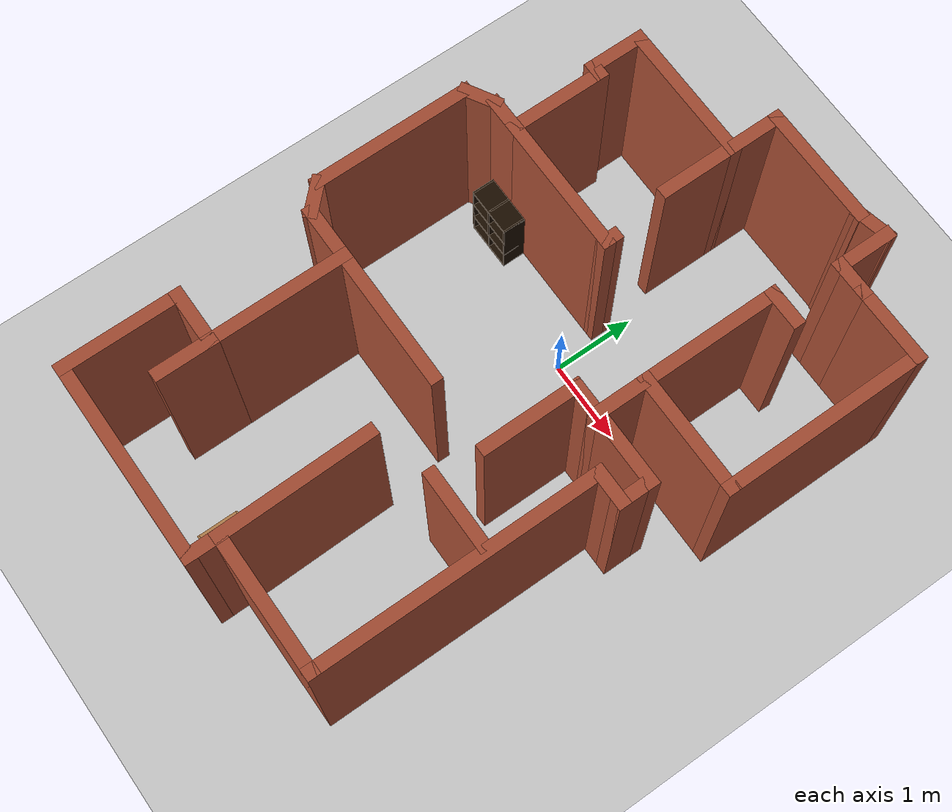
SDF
<sdf version="1.6">
 <world name="default">
  <light name="sun" type="directional">
   <pose>0 0 10 0 -0 0</pose>
   <diffuse>0.8 0.8 0.8 1</diffuse>
   <specular>0.2 0.2 0.2 1</specular>
   <attenuation>
    <range>1000</range>
    <constant>0.9</constant>
    <linear>0.01</linear>
    <quadratic>0.001</quadratic>
   </attenuation>
   <direction>-0.5 0.1 -0.9</direction>
  </light>
  <model name="ground_plane">
   <static>1</static>
   <link name="link">
    <collision name="collision">
     <geometry><plane><normal>0 0 1</normal><size>100 100</size></plane></geometry>
     <surface>
      <contact><collide_bitmask>65535</collide_bitmask></contact>
      <friction><ode><mu>100</mu><mu2>50</mu2></ode></friction>
     </surface>
    </collision>
    <visual name="visual">
     <cast_shadows>0</cast_shadows>
     <geometry><plane><normal>0 0 1</normal><size>100 100</size></plane></geometry>
     <material>
      <script><uri>file://media/materials/scripts/gazebo.material</uri><name>Gazebo/Grey</name></script>
     </material>
    </visual>
   </link>
  </model>
  <gravity>0 0 -9.8</gravity>
  <magnetic_field>6e-06 2.3e-05 -4.2e-05</magnetic_field>
  <atmosphere type="adiabatic"/>
  <physics name="default_physics" default="0" type="ode">
   <max_step_size>0.001</max_step_size>
   <real_time_factor>1</real_time_factor>
   <real_time_update_rate>1000</real_time_update_rate>
  </physics>
  <scene><ambient>0.4 0.4 0.4 1</ambient><background>0.7 0.7 0.7 1</background><shadows>1</shadows></scene>
  <audio><device>default</device></audio>
  <spherical_coordinates>
   <surface_model>EARTH_WGS84</surface_model>
   <latitude_deg>0</latitude_deg>
   <longitude_deg>0</longitude_deg>
   <elevation>0</elevation>
   <heading_deg>0</heading_deg>
  </spherical_coordinates>
  <model name="map_41">
   <pose>0.116232 -0.827112 0 0 -0 0</pose>
   <link name="Wall_1">
    <collision name="Wall_1_Collision">
     <geometry><box><size>1.5 0.15 2.5</size></box></geometry>
     <pose>0 0 1.25 0 -0 0</pose>
    </collision>
    <visual name="Wall_1_Visual">
     <pose>0 0 1.25 0 -0 0</pose>
     <geometry><box><size>1.5 0.15 2.5</size></box></geometry>
     <material>
      <script><uri>file://media/materials/scripts/gazebo.material</uri><name>Gazebo/Bricks</name></script>
      <ambient>1 1 1 1</ambient>
     </material>
     <meta><layer>0</layer></meta>
    </visual>
    <pose>0.319898 3.71517 0 0 -0 3.14159</pose>
   </link>
   <link name="Wall_10">
    <collision name="Wall_10_Collision">
     <geometry><box><size>0.5 0.15 2.5</size></box></geometry>
     <pose>0 0 1.25 0 -0 0</pose>
    </collision>
    <visual name="Wall_10_Visual">
     <pose>0 0 1.25 0 -0 0</pose>
     <geometry><box><size>0.5 0.15 2.5</size></box></geometry>
     <material>
      <script><uri>file://media/materials/scripts/gazebo.material</uri><name>Gazebo/Bricks</name></script>
      <ambient>1 1 1 1</ambient>
     </material>
     <meta><layer>0</layer></meta>
    </visual>
    <pose>-2.38447 -0.733575 0 0 -0 -0.785398</pose>
   </link>
   <link name="Wall_11">
    <collision name="Wall_11_Collision">
     <geometry><box><size>0.75 0.15 2.5</size></box></geometry>
     <pose>0 0 1.25 0 -0 0</pose>
    </collision>
    <visual name="Wall_11_Visual">
     <pose>0 0 1.25 0 -0 0</pose>
     <geometry><box><size>0.75 0.15 2.5</size></box></geometry>
     <material>
      <script><uri>file://media/materials/scripts/gazebo.material</uri><name>Gazebo/Bricks</name></script>
      <ambient>1 1 1 1</ambient>
     </material>
     <meta><layer>0</layer></meta>
    </visual>
    <pose>-1.96072 -0.857319 0 0 -0 0</pose>
   </link>
   <link name="Wall_12">
    <collision name="Wall_12_Collision">
     <geometry><box><size>1.75 0.15 2.5</size></box></geometry>
     <pose>0 0 1.25 0 -0 0</pose>
    </collision>
    <visual name="Wall_12_Visual">
     <pose>0 0 1.25 0 -0 0</pose>
     <geometry><box><size>1.75 0.15 2.5</size></box></geometry>
     <material>
      <script><uri>file://media/materials/scripts/gazebo.material</uri><name>Gazebo/Bricks</name></script>
      <ambient>1 1 1 1</ambient>
     </material>
     <meta><layer>0</layer></meta>
    </visual>
    <pose>-1.66072 -1.65732 0 0 -0 -1.5708</pose>
   </link>
   <link name="Wall_13">
    <collision name="Wall_13_Collision">
     <geometry><box><size>0.75 0.15 2.5</size></box></geometry>
     <pose>0 0 1.25 0 -0 0</pose>
    </collision>
    <visual name="Wall_13_Visual">
     <pose>0 0 1.25 0 -0 0</pose>
     <geometry><box><size>0.75 0.15 2.5</size></box></geometry>
     <material>
      <script><uri>file://media/materials/scripts/gazebo.material</uri><name>Gazebo/Bricks</name></script>
      <ambient>1 1 1 1</ambient>
     </material>
     <meta><layer>0</layer></meta>
    </visual>
    <pose>-1.96072 -2.45732 0 0 -0 3.14159</pose>
   </link>
   <link name="Wall_14">
    <collision name="Wall_14_Collision">
     <geometry><box><size>1.5 0.15 2.5</size></box></geometry>
     <pose>0 0 1.25 0 -0 0</pose>
    </collision>
    <visual name="Wall_14_Visual">
     <pose>0 0 1.25 0 -0 0</pose>
     <geometry><box><size>1.5 0.15 2.5</size></box></geometry>
     <material>
      <script><uri>file://media/materials/scripts/gazebo.material</uri><name>Gazebo/Bricks</name></script>
      <ambient>1 1 1 1</ambient>
     </material>
     <meta><layer>0</layer></meta>
    </visual>
    <pose>-2.26072 -3.13232 0 0 -0 -1.5708</pose>
   </link>
   <link name="Wall_15">
    <collision name="Wall_15_Collision">
     <geometry><box><size>2.5 0.15 2.5</size></box></geometry>
     <pose>0 0 1.25 0 -0 0</pose>
    </collision>
    <visual name="Wall_15_Visual">
     <pose>0 0 1.25 0 -0 0</pose>
     <geometry><box><size>2.5 0.15 2.5</size></box></geometry>
     <material>
      <script><uri>file://media/materials/scripts/gazebo.material</uri><name>Gazebo/Bricks</name></script>
      <ambient>1 1 1 1</ambient>
     </material>
     <meta><layer>0</layer></meta>
    </visual>
    <pose>-1.08572 -3.80732 0 0 -0 0</pose>
   </link>
   <link name="Wall_16">
    <collision name="Wall_16_Collision">
     <geometry><box><size>0.5 0.15 2.5</size></box></geometry>
     <pose>0 0 1.25 0 -0 0</pose>
    </collision>
    <visual name="Wall_16_Visual">
     <pose>0 0 1.25 0 -0 0</pose>
     <geometry><box><size>0.5 0.15 2.5</size></box></geometry>
     <material>
      <script><uri>file://media/materials/scripts/gazebo.material</uri><name>Gazebo/Bricks</name></script>
      <ambient>1 1 1 1</ambient>
     </material>
     <meta><layer>0</layer></meta>
    </visual>
    <pose>0.089277 -3.63232 0 0 -0 1.5708</pose>
   </link>
   <link name="Wall_19">
    <collision name="Wall_19_Collision">
     <geometry><box><size>1.75 0.15 2.5</size></box></geometry>
     <pose>0 0 1.25 0 -0 0</pose>
    </collision>
    <visual name="Wall_19_Visual">
     <pose>0 0 1.25 0 -0 0</pose>
     <geometry><box><size>1.75 0.15 2.5</size></box></geometry>
     <material>
      <script><uri>file://media/materials/scripts/gazebo.material</uri><name>Gazebo/Bricks</name></script>
      <ambient>1 1 1 1</ambient>
     </material>
     <meta><layer>0</layer></meta>
    </visual>
    <pose>0.889277 -3.45732 0 0 -0 0</pose>
   </link>
   <link name="Wall_2">
    <collision name="Wall_2_Collision">
     <geometry><box><size>0.75 0.15 2.5</size></box></geometry>
     <pose>0 0 1.25 0 -0 0</pose>
    </collision>
    <visual name="Wall_2_Visual">
     <pose>0 0 1.25 0 -0 0</pose>
     <geometry><box><size>0.75 0.15 2.5</size></box></geometry>
     <material>
      <script><uri>file://media/materials/scripts/gazebo.material</uri><name>Gazebo/Bricks</name></script>
      <ambient>1 1 1 1</ambient>
     </material>
     <meta><layer>0</layer></meta>
    </visual>
    <pose>-0.355102 3.41517 0 0 -0 -1.5708</pose>
   </link>
   <link name="Wall_20">
    <collision name="Wall_20_Collision">
     <geometry><box><size>3.5 0.15 2.5</size></box></geometry>
     <pose>0 0 1.25 0 -0 0</pose>
    </collision>
    <visual name="Wall_20_Visual">
     <pose>0 0 1.25 0 -0 0</pose>
     <geometry><box><size>3.5 0.15 2.5</size></box></geometry>
     <material>
      <script><uri>file://media/materials/scripts/gazebo.material</uri><name>Gazebo/Bricks</name></script>
      <ambient>1 1 1 1</ambient>
     </material>
     <meta><layer>0</layer></meta>
    </visual>
    <pose>1.68928 -1.78232 0 0 -0 1.5708</pose>
   </link>
   <link name="Wall_21">
    <collision name="Wall_21_Collision">
     <geometry><box><size>0.5 0.15 2.5</size></box></geometry>
     <pose>0 0 1.25 0 -0 0</pose>
    </collision>
    <visual name="Wall_21_Visual">
     <pose>0 0 1.25 0 -0 0</pose>
     <geometry><box><size>0.5 0.15 2.5</size></box></geometry>
     <material>
      <script><uri>file://media/materials/scripts/gazebo.material</uri><name>Gazebo/Bricks</name></script>
      <ambient>1 1 1 1</ambient>
     </material>
     <meta><layer>0</layer></meta>
    </visual>
    <pose>1.86428 -0.107319 0 0 -0 0</pose>
   </link>
   <link name="Wall_22">
    <collision name="Wall_22_Collision">
     <geometry><box><size>0.5 0.15 2.5</size></box></geometry>
     <pose>0 0 1.25 0 -0 0</pose>
    </collision>
    <visual name="Wall_22_Visual">
     <pose>0 0 1.25 0 -0 0</pose>
     <geometry><box><size>0.5 0.15 2.5</size></box></geometry>
     <material>
      <script><uri>file://media/materials/scripts/gazebo.material</uri><name>Gazebo/Bricks</name></script>
      <ambient>1 1 1 1</ambient>
     </material>
     <meta><layer>0</layer></meta>
    </visual>
    <pose>2.03928 0.067681 0 0 -0 1.5708</pose>
   </link>
   <link name="Wall_24">
    <collision name="Wall_24_Collision">
     <geometry><box><size>1.75 0.15 2.5</size></box></geometry>
     <pose>0 0 1.25 0 -0 0</pose>
    </collision>
    <visual name="Wall_24_Visual">
     <pose>0 0 1.25 0 -0 0</pose>
     <geometry><box><size>1.75 0.15 2.5</size></box></geometry>
     <material>
      <script><uri>file://media/materials/scripts/gazebo.material</uri><name>Gazebo/Bricks</name></script>
      <ambient>1 1 1 1</ambient>
     </material>
     <meta><layer>0</layer></meta>
    </visual>
    <pose>-0.860723 -0.857319 0 0 -0 0</pose>
   </link>
   <link name="Wall_26">
    <collision name="Wall_26_Collision">
     <geometry><box><size>1.91378 0.15 2.5</size></box></geometry>
     <pose>0 0 1.25 0 -0 0</pose>
    </collision>
    <visual name="Wall_26_Visual">
     <pose>0 0 1.25 0 -0 0</pose>
     <geometry><box><size>1.91378 0.15 2.5</size></box></geometry>
     <material>
      <script><uri>file://media/materials/scripts/gazebo.material</uri><name>Gazebo/Bricks</name></script>
      <ambient>1 1 1 1</ambient>
     </material>
     <meta><layer>0</layer></meta>
    </visual>
    <pose>0.0726 -2.57559 0 0 -0 -1.55188</pose>
   </link>
   <link name="Wall_28">
    <collision name="Wall_28_Collision">
     <geometry><box><size>1 0.15 2.5</size></box></geometry>
     <pose>0 0 1.25 0 -0 0</pose>
    </collision>
    <visual name="Wall_28_Visual">
     <pose>0 0 1.25 0 -0 0</pose>
     <geometry><box><size>1 0.15 2.5</size></box></geometry>
     <material>
      <script><uri>file://media/materials/scripts/gazebo.material</uri><name>Gazebo/Bricks</name></script>
      <ambient>1 1 1 1</ambient>
     </material>
     <meta><layer>0</layer></meta>
    </visual>
    <pose>1.19507 -1.44258 0 0 -0 0</pose>
   </link>
   <link name="Wall_3">
    <collision name="Wall_3_Collision">
     <geometry><box><size>1.75 0.15 2.5</size></box></geometry>
     <pose>0 0 1.25 0 -0 0</pose>
    </collision>
    <visual name="Wall_3_Visual">
     <pose>0 0 1.25 0 -0 0</pose>
     <geometry><box><size>1.75 0.15 2.5</size></box></geometry>
     <material>
      <script><uri>file://media/materials/scripts/gazebo.material</uri><name>Gazebo/Bricks</name></script>
      <ambient>1 1 1 1</ambient>
     </material>
     <meta><layer>0</layer></meta>
    </visual>
    <pose>-1.1551 3.11517 0 0 -0 3.14159</pose>
   </link>
   <link name="Wall_30">
    <collision name="Wall_30_Collision">
     <geometry><box><size>0.75 0.15 2.5</size></box></geometry>
     <pose>0 0 1.25 0 -0 0</pose>
    </collision>
    <visual name="Wall_30_Visual">
     <pose>0 0 1.25 0 -0 0</pose>
     <geometry><box><size>0.75 0.15 2.5</size></box></geometry>
     <material>
      <script><uri>file://media/materials/scripts/gazebo.material</uri><name>Gazebo/Bricks</name></script>
      <ambient>1 1 1 1</ambient>
     </material>
     <meta><layer>0</layer></meta>
    </visual>
    <pose>-1.66072 -2.75732 0 0 -0 -1.5708</pose>
   </link>
   <link name="Wall_32">
    <collision name="Wall_32_Collision">
     <geometry><box><size>1 0.15 2.5</size></box></geometry>
     <pose>0 0 1.25 0 -0 0</pose>
    </collision>
    <visual name="Wall_32_Visual">
     <pose>0 0 1.25 0 -0 0</pose>
     <geometry><box><size>1 0.15 2.5</size></box></geometry>
     <material>
      <script><uri>file://media/materials/scripts/gazebo.material</uri><name>Gazebo/Bricks</name></script>
      <ambient>1 1 1 1</ambient>
     </material>
     <meta><layer>0</layer></meta>
    </visual>
    <pose>1.61428 0.242681 0 0 -0 3.14159</pose>
   </link>
   <link name="Wall_35">
    <collision name="Wall_35_Collision">
     <geometry><box><size>0.75 0.15 2.5</size></box></geometry>
     <pose>0 0 1.25 0 -0 0</pose>
    </collision>
    <visual name="Wall_35_Visual">
     <pose>0 0 1.25 0 -0 0</pose>
     <geometry><box><size>0.75 0.15 2.5</size></box></geometry>
     <material>
      <script><uri>file://media/materials/scripts/gazebo.material</uri><name>Gazebo/Bricks</name></script>
      <ambient>1 1 1 1</ambient>
     </material>
     <meta><layer>0</layer></meta>
    </visual>
    <pose>1.18928 0.542681 0 0 -0 1.5708</pose>
   </link>
   <link name="Wall_36">
    <collision name="Wall_36_Collision">
     <geometry><box><size>1.5 0.15 2.5</size></box></geometry>
     <pose>0 0 1.25 0 -0 0</pose>
    </collision>
    <visual name="Wall_36_Visual">
     <pose>0 0 1.25 0 -0 0</pose>
     <geometry><box><size>1.5 0.15 2.5</size></box></geometry>
     <material>
      <script><uri>file://media/materials/scripts/gazebo.material</uri><name>Gazebo/Bricks</name></script>
      <ambient>1 1 1 1</ambient>
     </material>
     <meta><layer>0</layer></meta>
    </visual>
    <pose>1.86428 0.842681 0 0 -0 0</pose>
   </link>
   <link name="Wall_37">
    <collision name="Wall_37_Collision">
     <geometry><box><size>2.5 0.15 2.5</size></box></geometry>
     <pose>0 0 1.25 0 -0 0</pose>
    </collision>
    <visual name="Wall_37_Visual">
     <pose>0 0 1.25 0 -0 0</pose>
     <geometry><box><size>2.5 0.15 2.5</size></box></geometry>
     <material>
      <script><uri>file://media/materials/scripts/gazebo.material</uri><name>Gazebo/Bricks</name></script>
      <ambient>1 1 1 1</ambient>
     </material>
     <meta><layer>0</layer></meta>
    </visual>
    <pose>2.53928 2.01768 0 0 -0 1.5708</pose>
   </link>
   <link name="Wall_4">
    <collision name="Wall_4_Collision">
     <geometry><box><size>0.75 0.15 2.5</size></box></geometry>
     <pose>0 0 1.25 0 -0 0</pose>
    </collision>
    <visual name="Wall_4_Visual">
     <pose>0 0 1.25 0 -0 0</pose>
     <geometry><box><size>0.75 0.15 2.5</size></box></geometry>
     <material>
      <script><uri>file://media/materials/scripts/gazebo.material</uri><name>Gazebo/Bricks</name></script>
      <ambient>1 1 1 1</ambient>
     </material>
     <meta><layer>0</layer></meta>
    </visual>
    <pose>-1.9551 2.81517 0 0 -0 -1.5708</pose>
   </link>
   <link name="Wall_40">
    <collision name="Wall_40_Collision">
     <geometry><box><size>1 0.15 2.5</size></box></geometry>
     <pose>0 0 1.25 0 -0 0</pose>
    </collision>
    <visual name="Wall_40_Visual">
     <pose>0 0 1.25 0 -0 0</pose>
     <geometry><box><size>1 0.15 2.5</size></box></geometry>
     <material>
      <script><uri>file://media/materials/scripts/gazebo.material</uri><name>Gazebo/Bricks</name></script>
      <ambient>1 1 1 1</ambient>
     </material>
     <meta><layer>0</layer></meta>
    </visual>
    <pose>2.11428 3.19268 0 0 -0 3.14159</pose>
   </link>
   <link name="Wall_42">
    <collision name="Wall_42_Collision">
     <geometry><box><size>0.5 0.15 2.5</size></box></geometry>
     <pose>0 0 1.25 0 -0 0</pose>
    </collision>
    <visual name="Wall_42_Visual">
     <pose>0 0 1.25 0 -0 0</pose>
     <geometry><box><size>0.5 0.15 2.5</size></box></geometry>
     <material>
      <script><uri>file://media/materials/scripts/gazebo.material</uri><name>Gazebo/Bricks</name></script>
      <ambient>1 1 1 1</ambient>
     </material>
     <meta><layer>0</layer></meta>
    </visual>
    <pose>1.51428 3.19268 0 0 -0 3.14159</pose>
   </link>
   <link name="Wall_45">
    <collision name="Wall_45_Collision">
     <geometry><box><size>0.75 0.15 2.5</size></box></geometry>
     <pose>0 0 1.25 0 -0 0</pose>
    </collision>
    <visual name="Wall_45_Visual">
     <pose>0 0 1.25 0 -0 0</pose>
     <geometry><box><size>0.75 0.15 2.5</size></box></geometry>
     <material>
      <script><uri>file://media/materials/scripts/gazebo.material</uri><name>Gazebo/Bricks</name></script>
      <ambient>1 1 1 1</ambient>
     </material>
     <meta><layer>0</layer></meta>
    </visual>
    <pose>1.33928 3.49268 0 0 -0 1.5708</pose>
   </link>
   <link name="Wall_46">
    <collision name="Wall_46_Collision">
     <geometry><box><size>0.502994 0.15 2.5</size></box></geometry>
     <pose>0 0 1.25 0 -0 0</pose>
    </collision>
    <visual name="Wall_46_Visual">
     <pose>0 0 1.25 0 -0 0</pose>
     <geometry><box><size>0.502994 0.15 2.5</size></box></geometry>
     <material>
      <script><uri>file://media/materials/scripts/gazebo.material</uri><name>Gazebo/Bricks</name></script>
      <ambient>1 1 1 1</ambient>
     </material>
     <meta><layer>0</layer></meta>
    </visual>
    <pose>1.16709 3.75393 0 0 -0 -2.9202</pose>
   </link>
   <link name="Wall_5">
    <collision name="Wall_5_Collision">
     <geometry><box><size>0.25 0.15 2.5</size></box></geometry>
     <pose>0 0 1.25 0 -0 0</pose>
    </collision>
    <visual name="Wall_5_Visual">
     <pose>0 0 1.25 0 -0 0</pose>
     <geometry><box><size>0.25 0.15 2.5</size></box></geometry>
     <material>
      <script><uri>file://media/materials/scripts/gazebo.material</uri><name>Gazebo/Bricks</name></script>
      <ambient>1 1 1 1</ambient>
     </material>
     <meta><layer>0</layer></meta>
    </visual>
    <pose>-1.9051 2.51517 0 0 -0 0</pose>
   </link>
   <link name="Wall_52">
    <collision name="Wall_52_Collision">
     <geometry><box><size>1 0.15 2.5</size></box></geometry>
     <pose>0 0 1.25 0 -0 0</pose>
    </collision>
    <visual name="Wall_52_Visual">
     <pose>0 0 1.25 0 -0 0</pose>
     <geometry><box><size>1 0.15 2.5</size></box></geometry>
     <material>
      <script><uri>file://media/materials/scripts/gazebo.material</uri><name>Gazebo/Bricks</name></script>
      <ambient>1 1 1 1</ambient>
     </material>
     <meta><layer>0</layer></meta>
    </visual>
    <pose>-0.355102 2.69017 0 0 -0 -1.5708</pose>
   </link>
   <link name="Wall_54">
    <collision name="Wall_54_Collision">
     <geometry><box><size>1.75 0.15 2.5</size></box></geometry>
     <pose>0 0 1.25 0 -0 0</pose>
    </collision>
    <visual name="Wall_54_Visual">
     <pose>0 0 1.25 0 -0 0</pose>
     <geometry><box><size>1.75 0.15 2.5</size></box></geometry>
     <material>
      <script><uri>file://media/materials/scripts/gazebo.material</uri><name>Gazebo/Bricks</name></script>
      <ambient>1 1 1 1</ambient>
     </material>
     <meta><layer>0</layer></meta>
    </visual>
    <pose>-1.0551 1.41517 0 0 -0 0</pose>
   </link>
   <link name="Wall_55">
    <collision name="Wall_55_Collision">
     <geometry><box><size>0.25 0.15 2.5</size></box></geometry>
     <pose>0 0 1.25 0 -0 0</pose>
    </collision>
    <visual name="Wall_55_Visual">
     <pose>0 0 1.25 0 -0 0</pose>
     <geometry><box><size>0.25 0.15 2.5</size></box></geometry>
     <material>
      <script><uri>file://media/materials/scripts/gazebo.material</uri><name>Gazebo/Bricks</name></script>
      <ambient>1 1 1 1</ambient>
     </material>
     <meta><layer>0</layer></meta>
    </visual>
    <pose>-0.255102 1.46517 0 0 -0 1.5708</pose>
   </link>
   <link name="Wall_58">
    <collision name="Wall_58_Collision">
     <geometry><box><size>0.5 0.15 2.5</size></box></geometry>
     <pose>0 0 1.25 0 -0 0</pose>
    </collision>
    <visual name="Wall_58_Visual">
     <pose>0 0 1.25 0 -0 0</pose>
     <geometry><box><size>0.5 0.15 2.5</size></box></geometry>
     <material>
      <script><uri>file://media/materials/scripts/gazebo.material</uri><name>Gazebo/Bricks</name></script>
      <ambient>1 1 1 1</ambient>
     </material>
     <meta><layer>0</layer></meta>
    </visual>
    <pose>1.01428 0.242681 0 0 -0 3.14159</pose>
   </link>
   <link name="Wall_59">
    <collision name="Wall_59_Collision">
     <geometry><box><size>1.25 0.15 2.5</size></box></geometry>
     <pose>0 0 1.25 0 -0 0</pose>
    </collision>
    <visual name="Wall_59_Visual">
     <pose>0 0 1.25 0 -0 0</pose>
     <geometry><box><size>1.25 0.15 2.5</size></box></geometry>
     <material>
      <script><uri>file://media/materials/scripts/gazebo.material</uri><name>Gazebo/Bricks</name></script>
      <ambient>1 1 1 1</ambient>
     </material>
     <meta><layer>0</layer></meta>
    </visual>
    <pose>0.839277 -0.307319 0 0 -0 -1.5708</pose>
   </link>
   <link name="Wall_6">
    <collision name="Wall_6_Collision">
     <geometry><box><size>1.25 0.15 2.5</size></box></geometry>
     <pose>0 0 1.25 0 -0 0</pose>
    </collision>
    <visual name="Wall_6_Visual">
     <pose>0 0 1.25 0 -0 0</pose>
     <geometry><box><size>1.25 0.15 2.5</size></box></geometry>
     <material>
      <script><uri>file://media/materials/scripts/gazebo.material</uri><name>Gazebo/Bricks</name></script>
      <ambient>1 1 1 1</ambient>
     </material>
     <meta><layer>0</layer></meta>
    </visual>
    <pose>-1.8551 1.96517 0 0 -0 -1.5708</pose>
   </link>
   <link name="Wall_61">
    <collision name="Wall_61_Collision">
     <geometry><box><size>1.75 0.15 2.5</size></box></geometry>
     <pose>0 0 1.25 0 -0 0</pose>
    </collision>
    <visual name="Wall_61_Visual">
     <pose>0 0 1.25 0 -0 0</pose>
     <geometry><box><size>1.75 0.15 2.5</size></box></geometry>
     <material>
      <script><uri>file://media/materials/scripts/gazebo.material</uri><name>Gazebo/Bricks</name></script>
      <ambient>1 1 1 1</ambient>
     </material>
     <meta><layer>0</layer></meta>
    </visual>
    <pose>1.18928 1.64268 0 0 -0 1.5708</pose>
   </link>
   <link name="Wall_62">
    <collision name="Wall_62_Collision">
     <geometry><box><size>0.5 0.15 2.5</size></box></geometry>
     <pose>0 0 1.25 0 -0 0</pose>
    </collision>
    <visual name="Wall_62_Visual">
     <pose>0 0 1.25 0 -0 0</pose>
     <geometry><box><size>0.5 0.15 2.5</size></box></geometry>
     <material>
      <script><uri>file://media/materials/scripts/gazebo.material</uri><name>Gazebo/Bricks</name></script>
      <ambient>1 1 1 1</ambient>
     </material>
     <meta><layer>0</layer></meta>
    </visual>
    <pose>1.36428 2.44268 0 0 -0 0</pose>
   </link>
   <link name="Wall_7">
    <collision name="Wall_7_Collision">
     <geometry><box><size>0.5 0.15 2.5</size></box></geometry>
     <pose>0 0 1.25 0 -0 0</pose>
    </collision>
    <visual name="Wall_7_Visual">
     <pose>0 0 1.25 0 -0 0</pose>
     <geometry><box><size>0.5 0.15 2.5</size></box></geometry>
     <material>
      <script><uri>file://media/materials/scripts/gazebo.material</uri><name>Gazebo/Bricks</name></script>
      <ambient>1 1 1 1</ambient>
     </material>
     <meta><layer>0</layer></meta>
    </visual>
    <pose>-2.0301 1.41517 0 0 -0 3.14159</pose>
   </link>
   <link name="Wall_8">
    <collision name="Wall_8_Collision">
     <geometry><box><size>0.5 0.15 2.5</size></box></geometry>
     <pose>0 0 1.25 0 -0 0</pose>
    </collision>
    <visual name="Wall_8_Visual">
     <pose>0 0 1.25 0 -0 0</pose>
     <geometry><box><size>0.5 0.15 2.5</size></box></geometry>
     <material>
      <script><uri>file://media/materials/scripts/gazebo.material</uri><name>Gazebo/Bricks</name></script>
      <ambient>1 1 1 1</ambient>
     </material>
     <meta><layer>0</layer></meta>
    </visual>
    <pose>-2.35666 1.32767 0 0 -0 -2.61799</pose>
   </link>
   <link name="Wall_9">
    <collision name="Wall_9_Collision">
     <geometry><box><size>2 0.15 2.5</size></box></geometry>
     <pose>0 0 1.25 0 -0 0</pose>
    </collision>
    <visual name="Wall_9_Visual">
     <pose>0 0 1.25 0 -0 0</pose>
     <geometry><box><size>2 0.15 2.5</size></box></geometry>
     <material>
      <script><uri>file://media/materials/scripts/gazebo.material</uri><name>Gazebo/Bricks</name></script>
      <ambient>1 1 1 1</ambient>
     </material>
     <meta><layer>0</layer></meta>
    </visual>
    <pose>-2.50821 0.315168 0 0 -0 -1.5708</pose>
   </link>
   <static>1</static>
  </model>
  <model name="cabinet">
   <static>1</static>
   <link name="cabinet_bottom_plate">
    <inertial>
     <pose>0 0 -1 0 -0 0</pose>
     <inertia><ixx>2.05</ixx><ixy>0</ixy><ixz>0</ixz><iyy>2.05</iyy><iyz>0</iyz><izz>2.05</izz></inertia>
     <mass>25</mass>
    </inertial>
    <collision name="cabinet_bottom_plate_geom">
     <pose>0 0 0.01 0 -0 0</pose>
     <geometry><box><size>0.45 0.45 0.02</size></box></geometry>
    </collision>
    <visual name="cabinet_bottom_plate_geom_visual">
     <pose>0 0 0.01 0 -0 0</pose>
     <geometry><box><size>0.45 0.45 0.02</size></box></geometry>
     <material>
      <script><uri>file://media/materials/scripts/gazebo.material</uri><name>Gazebo/Wood</name></script>
     </material>
    </visual>
    <collision name="cabinet_bottom_plate_geom_cabinet_back_plate">
     <pose>0.235 0 0.51 0 -0 0</pose>
     <geometry><box><size>0.02 0.45 1.02</size></box></geometry>
    </collision>
    <visual name="cabinet_bottom_plate_geom_cabinet_back_plate_visual">
     <pose>0.235 0 0.51 0 -0 0</pose>
     <geometry><box><size>0.02 0.45 1.02</size></box></geometry>
     <material>
      <script><uri>file://media/materials/scripts/gazebo.material</uri><name>Gazebo/Wood</name></script>
     </material>
    </visual>
    <collision name="cabinet_bottom_plate_geom_cabinet_left_plate">
     <pose>0 0.235 0.51 0 -0 0</pose>
     <geometry><box><size>0.45 0.02 1.02</size></box></geometry>
    </collision>
    <visual name="cabinet_bottom_plate_geom_cabinet_left_plate_visual">
     <pose>0 0.235 0.51 0 -0 0</pose>
     <geometry><box><size>0.45 0.02 1.02</size></box></geometry>
     <material>
      <script><uri>file://media/materials/scripts/gazebo.material</uri><name>Gazebo/Wood</name></script>
     </material>
    </visual>
    <collision name="cabinet_bottom_plate_geom_cabinet_middle_plate">
     <pose>0 0 0.51 0 -0 0</pose>
     <geometry><box><size>0.45 0.45 0.02</size></box></geometry>
    </collision>
    <visual name="cabinet_bottom_plate_geom_cabinet_middle_plate_visual">
     <pose>0 0 0.51 0 -0 0</pose>
     <geometry><box><size>0.45 0.45 0.02</size></box></geometry>
     <material>
      <script><uri>file://media/materials/scripts/gazebo.material</uri><name>Gazebo/Wood</name></script>
     </material>
    </visual>
    <collision name="cabinet_bottom_plate_geom_cabinet_right_plate">
     <pose>0 -0.235 0.51 0 -0 0</pose>
     <geometry><box><size>0.45 0.02 1.02</size></box></geometry>
    </collision>
    <visual name="cabinet_bottom_plate_geom_cabinet_right_plate_visual">
     <pose>0 -0.235 0.51 0 -0 0</pose>
     <geometry><box><size>0.45 0.02 1.02</size></box></geometry>
     <material>
      <script><uri>file://media/materials/scripts/gazebo.material</uri><name>Gazebo/Wood</name></script>
     </material>
    </visual>
    <collision name="cabinet_bottom_plate_geom_cabinet_top_plate">
     <pose>0 0 1.01 0 -0 0</pose>
     <geometry><box><size>0.45 0.45 0.02</size></box></geometry>
    </collision>
    <visual name="cabinet_bottom_plate_geom_cabinet_top_plate_visual">
     <pose>0 0 1.01 0 -0 0</pose>
     <geometry><box><size>0.45 0.45 0.02</size></box></geometry>
     <material>
      <script><uri>file://media/materials/scripts/gazebo.material</uri><name>Gazebo/Wood</name></script>
     </material>
    </visual>
   </link>
   <pose>-0.150246 -4.18403 0 0 -0 0</pose>
  </model>
  <model name="6_Cube_StorageE">
   <link name="Wall_0">
    <pose>0 0 0.01 0 -0 0</pose>
    <inertial>
     <mass>1.6201</mass>
     <inertia><ixx>0.0119</ixx><iyy>0.0631</iyy><izz>0.0513</izz><ixy>0</ixy><ixz>0</ixz><iyz>0</iyz></inertia>
    </inertial>
    <collision name="Wall_0_Collision"><geometry><box><size>0.616 0.296 0.02</size></box></geometry></collision>
    <visual name="Wall_0_Visual">
     <geometry><box><size>0.616 0.296 0.02</size></box></geometry>
     <material>
      <script><uri>file://media/materials/scripts/gazebo.material</uri><name>Gazebo/Grey</name></script>
      <ambient>0.105882 0.0509804 0 1</ambient>
     </material>
    </visual>
   </link>
   <joint name="0_2" type="fixed">
    <pose>-0.308 0 0 0 -0 0</pose>
    <parent>Wall_2</parent>
    <child>Wall_0</child>
    <axis>
     <xyz>1 0 0</xyz>
     <use_parent_model_frame>0</use_parent_model_frame>
     <limit><lower>-1e+16</lower><upper>1e+16</upper></limit>
    </axis>
   </joint>
   <joint name="0_12" type="fixed">
    <parent>Wall_12</parent>
    <child>Wall_0</child>
    <axis>
     <xyz>0 0 1</xyz>
     <use_parent_model_frame>0</use_parent_model_frame>
     <limit><lower>-1e+16</lower><upper>1e+16</upper></limit>
    </axis>
   </joint>
   <joint name="0_4" type="fixed">
    <pose>0.308 0 0 0 -0 0</pose>
    <parent>Wall_4</parent>
    <child>Wall_0</child>
    <axis>
     <xyz>1 0 0</xyz>
     <use_parent_model_frame>0</use_parent_model_frame>
     <limit><lower>-1e+16</lower><upper>1e+16</upper></limit>
    </axis>
   </joint>
   <link name="Wall_10">
    <pose>0 0 0.61 0 -0 0</pose>
    <inertial>
     <mass>1.6201</mass>
     <inertia><ixx>0.0119</ixx><iyy>0.0631</iyy><izz>0.0513</izz><ixy>0</ixy><ixz>0</ixz><iyz>0</iyz></inertia>
    </inertial>
    <collision name="Wall_10_Collision"><geometry><box><size>0.616 0.296 0.02</size></box></geometry></collision>
    <visual name="Wall_10_Visual">
     <geometry><box><size>0.616 0.296 0.02</size></box></geometry>
     <material>
      <script><uri>file://media/materials/scripts/gazebo.material</uri><name>Gazebo/Grey</name></script>
      <ambient>0.105882 0.0509804 0 1</ambient>
     </material>
    </visual>
   </link>
   <joint name="10_2" type="fixed">
    <pose>-0.308 0 0 0 -0 0</pose>
    <parent>Wall_2</parent>
    <child>Wall_10</child>
    <axis>
     <xyz>1 0 0</xyz>
     <use_parent_model_frame>0</use_parent_model_frame>
     <limit><lower>-1e+16</lower><upper>1e+16</upper></limit>
    </axis>
   </joint>
   <joint name="10_12" type="fixed">
    <parent>Wall_12</parent>
    <child>Wall_10</child>
    <axis>
     <xyz>0 0 1</xyz>
     <use_parent_model_frame>0</use_parent_model_frame>
     <limit><lower>-1e+16</lower><upper>1e+16</upper></limit>
    </axis>
   </joint>
   <joint name="10_4" type="fixed">
    <pose>0.308 0 0 0 -0 0</pose>
    <parent>Wall_4</parent>
    <child>Wall_10</child>
    <axis>
     <xyz>1 0 0</xyz>
     <use_parent_model_frame>0</use_parent_model_frame>
     <limit><lower>-1e+16</lower><upper>1e+16</upper></limit>
    </axis>
   </joint>
   <link name="Wall_12">
    <pose>0 0 0.4575 0 -0 0</pose>
    <inertial>
     <mass>2.4065</mass>
     <inertia><ixx>0.0177</ixx><iyy>0.1855</iyy><izz>0.168</izz><ixy>0</ixy><ixz>0</ixz><iyz>0</iyz></inertia>
    </inertial>
    <collision name="Wall_12_Collision"><geometry><box><size>0.02 0.296 0.915</size></box></geometry></collision>
    <visual name="Wall_12_Visual">
     <geometry><box><size>0.02 0.296 0.915</size></box></geometry>
     <material>
      <script><uri>file://media/materials/scripts/gazebo.material</uri><name>Gazebo/Grey</name></script>
      <ambient>0.105882 0.0509804 0 1</ambient>
     </material>
    </visual>
   </link>
   <link name="Wall_2">
    <pose>-0.298 0 0.4575 0 -0 0</pose>
    <inertial>
     <mass>2.4065</mass>
     <inertia><ixx>0.0177</ixx><iyy>0.1855</iyy><izz>0.168</izz><ixy>0</ixy><ixz>0</ixz><iyz>0</iyz></inertia>
    </inertial>
    <collision name="Wall_2_Collision"><geometry><box><size>0.02 0.296 0.915</size></box></geometry></collision>
    <visual name="Wall_2_Visual">
     <geometry><box><size>0.02 0.296 0.915</size></box></geometry>
     <material>
      <script><uri>file://media/materials/scripts/gazebo.material</uri><name>Gazebo/Grey</name></script>
      <ambient>0.105882 0.0509804 0 1</ambient>
     </material>
    </visual>
   </link>
   <link name="Wall_4">
    <pose>0.298 0 0.4575 0 -0 0</pose>
    <inertial>
     <mass>2.4065</mass>
     <inertia><ixx>0.0177</ixx><iyy>0.1855</iyy><izz>0.168</izz><ixy>0</ixy><ixz>0</ixz><iyz>0</iyz></inertia>
    </inertial>
    <collision name="Wall_4_Collision"><geometry><box><size>0.02 0.296 0.915</size></box></geometry></collision>
    <visual name="Wall_4_Visual">
     <geometry><box><size>0.02 0.296 0.915</size></box></geometry>
     <material>
      <script><uri>file://media/materials/scripts/gazebo.material</uri><name>Gazebo/Grey</name></script>
      <ambient>0.105882 0.0509804 0 1</ambient>
     </material>
    </visual>
   </link>
   <link name="Wall_6">
    <pose>0 0 0.905 0 -0 0</pose>
    <inertial>
     <mass>1.6201</mass>
     <inertia><ixx>0.0119</ixx><iyy>0.0631</iyy><izz>0.0513</izz><ixy>0</ixy><ixz>0</ixz><iyz>0</iyz></inertia>
    </inertial>
    <collision name="Wall_6_Collision"><geometry><box><size>0.616 0.296 0.02</size></box></geometry></collision>
    <visual name="Wall_6_Visual">
     <geometry><box><size>0.616 0.296 0.02</size></box></geometry>
     <material>
      <script><uri>file://media/materials/scripts/gazebo.material</uri><name>Gazebo/Grey</name></script>
      <ambient>0.105882 0.0509804 0 1</ambient>
     </material>
    </visual>
   </link>
   <joint name="6_2" type="fixed">
    <pose>-0.308 0 0 0 -0 0</pose>
    <parent>Wall_2</parent>
    <child>Wall_6</child>
    <axis>
     <xyz>2 0 0</xyz>
     <use_parent_model_frame>0</use_parent_model_frame>
     <limit><lower>-1e+16</lower><upper>1e+16</upper></limit>
    </axis>
   </joint>
   <joint name="6_12" type="fixed">
    <parent>Wall_12</parent>
    <child>Wall_6</child>
    <axis>
     <xyz>0 0 1</xyz>
     <use_parent_model_frame>0</use_parent_model_frame>
     <limit><lower>-1e+16</lower><upper>1e+16</upper></limit>
    </axis>
   </joint>
   <joint name="6_4" type="fixed">
    <pose>0.308 0 0 0 -0 0</pose>
    <parent>Wall_4</parent>
    <child>Wall_6</child>
    <axis>
     <xyz>1 0 0</xyz>
     <use_parent_model_frame>0</use_parent_model_frame>
     <limit><lower>-1e+16</lower><upper>1e+16</upper></limit>
    </axis>
   </joint>
   <link name="Wall_8">
    <pose>0 0 0.305 0 -0 0</pose>
    <inertial>
     <mass>1.6201</mass>
     <inertia><ixx>0.0119</ixx><iyy>0.0631</iyy><izz>0.0513</izz><ixy>0</ixy><ixz>0</ixz><iyz>0</iyz></inertia>
    </inertial>
    <collision name="Wall_8_Collision"><geometry><box><size>0.616 0.296 0.02</size></box></geometry></collision>
    <visual name="Wall_8_Visual">
     <geometry><box><size>0.616 0.296 0.02</size></box></geometry>
     <material>
      <script><uri>file://media/materials/scripts/gazebo.material</uri><name>Gazebo/Grey</name></script>
      <ambient>0.105882 0.0509804 0 1</ambient>
     </material>
    </visual>
   </link>
   <joint name="8_2" type="fixed">
    <pose>-0.308 0 0 0 -0 0</pose>
    <parent>Wall_2</parent>
    <child>Wall_8</child>
    <axis>
     <xyz>1 0 0</xyz>
     <use_parent_model_frame>0</use_parent_model_frame>
     <limit><lower>-1e+16</lower><upper>1e+16</upper></limit>
    </axis>
   </joint>
   <joint name="8_12" type="fixed">
    <parent>Wall_12</parent>
    <child>Wall_8</child>
    <axis>
     <xyz>0 0 1</xyz>
     <use_parent_model_frame>0</use_parent_model_frame>
     <limit><lower>-1e+16</lower><upper>1e+16</upper></limit>
    </axis>
   </joint>
   <joint name="8_4" type="fixed">
    <pose>0.308 0 0 0 -0 0</pose>
    <parent>Wall_4</parent>
    <child>Wall_8</child>
    <axis>
     <xyz>1 0 0</xyz>
     <use_parent_model_frame>0</use_parent_model_frame>
     <limit><lower>-1e+16</lower><upper>1e+16</upper></limit>
    </axis>
   </joint>
   <static>1</static>
   <pose>-1.71066 0.37816 0 0 -0 0</pose>
  </model>
 </world>
</sdf>
